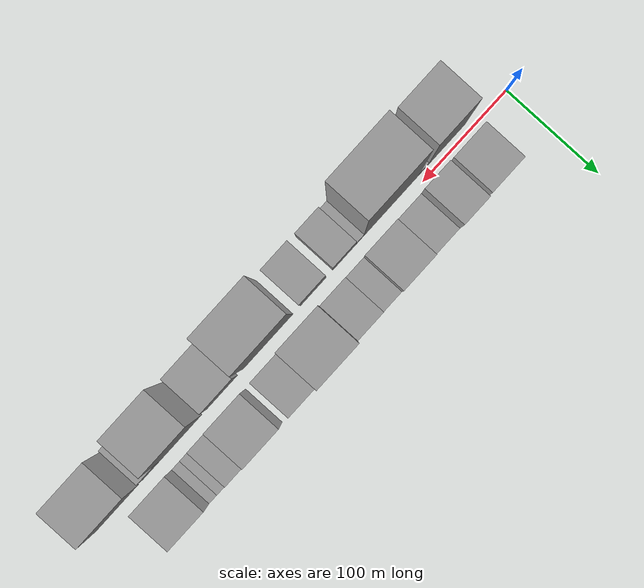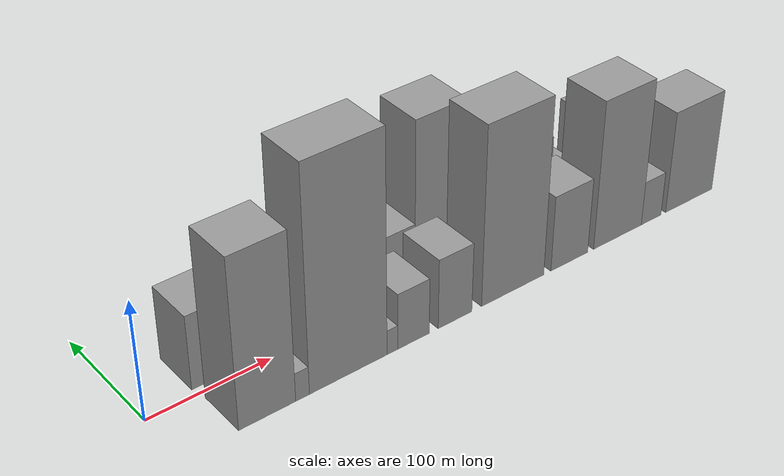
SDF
<sdf version="1.6">
 <world name="default">
  <scene>
   <sky><clouds><speed>12</speed></clouds></sky>
   <ambient>0.4 0.4 0.4 1</ambient>
   <background>0.7 0.7 0.7 1</background>
   <shadows>1</shadows>
  </scene>
  <gravity>0 0 -9.8066</gravity>
  <magnetic_field>6e-06 2.3e-05 -4.2e-05</magnetic_field>
  <physics default="0" name="default_physics" type="ode">
   <ode>
    <solver>
     <type>quick</type>
     <iters>10</iters>
     <sor>1.0</sor>
     <use_dynamic_moi_rescaling>0</use_dynamic_moi_rescaling>
    </solver>
    <constraints>
     <cfm>0</cfm>
     <erp>0.2</erp>
     <contact_max_correcting_vel>100</contact_max_correcting_vel>
     <contact_surface_layer>0.001</contact_surface_layer>
    </constraints>
   </ode>
   <max_step_size>0.004</max_step_size>
   <real_time_factor>1</real_time_factor>
   <real_time_update_rate>250</real_time_update_rate>
  </physics>
  <light name="sun" type="directional">
   <pose>0 0 10 0 0 0</pose>
   <diffuse>0.8 0.8 0.8 1</diffuse>
   <specular>0.2 0.2 0.2 1</specular>
   <attenuation>
    <range>1000</range>
    <constant>0.9</constant>
    <linear>0.01</linear>
    <quadratic>0.001</quadratic>
   </attenuation>
   <direction>-0.5 0.1 -0.9</direction>
  </light>
  <model name="building_1">
   <static>1</static>
   <pose>58.5081 26.0000 0 0.000000 0.000000 1.570796</pose>
   <link name="link">
    <pose>0 0 31.50 0 0 0</pose>
    <collision name="collision"><geometry><box><size>40.0000 37.0162 63.0000</size></box></geometry></collision>
    <visual name="visual">
     <cast_shadows>0</cast_shadows>
     <geometry><box><size>40.0000 37.0162 63.0000</size></box></geometry>
     <material>
      <script>
       <uri>model://grey_wall/materials/scripts</uri>
       <uri>model://grey_wall/materials/textures</uri>
       <name>vrc/grey_wall</name>
      </script>
     </material>
    </visual>
   </link>
  </model>
  <model name="building_2">
   <static>1</static>
   <pose>98.3458 26.0000 0 0.000000 0.000000 1.570796</pose>
   <link name="link">
    <pose>0 0 46.50 0 0 0</pose>
    <collision name="collision"><geometry><box><size>40.0000 28.6591 93.0000</size></box></geometry></collision>
    <visual name="visual">
     <cast_shadows>0</cast_shadows>
     <geometry><box><size>40.0000 28.6591 93.0000</size></box></geometry>
     <material>
      <script>
       <uri>model://grey_wall/materials/scripts</uri>
       <uri>model://grey_wall/materials/textures</uri>
       <name>vrc/grey_wall</name>
      </script>
     </material>
    </visual>
   </link>
  </model>
  <model name="building_3">
   <static>1</static>
   <pose>126.8009 26.0000 0 0.000000 0.000000 1.570796</pose>
   <link name="link">
    <pose>0 0 25.50 0 0 0</pose>
    <collision name="collision"><geometry><box><size>40.0000 28.2510 51.0000</size></box></geometry></collision>
    <visual name="visual">
     <cast_shadows>0</cast_shadows>
     <geometry><box><size>40.0000 28.2510 51.0000</size></box></geometry>
     <material>
      <script>
       <uri>model://grey_wall/materials/scripts</uri>
       <uri>model://grey_wall/materials/textures</uri>
       <name>vrc/grey_wall</name>
      </script>
     </material>
    </visual>
   </link>
  </model>
  <model name="building_4">
   <static>1</static>
   <pose>159.5957 26.0000 0 0.000000 0.000000 1.570796</pose>
   <link name="link">
    <pose>0 0 36.00 0 0 0</pose>
    <collision name="collision"><geometry><box><size>40.0000 37.3388 72.0000</size></box></geometry></collision>
    <visual name="visual">
     <cast_shadows>0</cast_shadows>
     <geometry><box><size>40.0000 37.3388 72.0000</size></box></geometry>
     <material>
      <script>
       <uri>model://grey_wall/materials/scripts</uri>
       <uri>model://grey_wall/materials/textures</uri>
       <name>vrc/grey_wall</name>
      </script>
     </material>
    </visual>
   </link>
  </model>
  <model name="building_5">
   <static>1</static>
   <pose>188.9853 26.0000 0 0.000000 0.000000 1.570796</pose>
   <link name="link">
    <pose>0 0 19.50 0 0 0</pose>
    <collision name="collision"><geometry><box><size>40.0000 21.4404 39.0000</size></box></geometry></collision>
    <visual name="visual">
     <cast_shadows>0</cast_shadows>
     <geometry><box><size>40.0000 21.4404 39.0000</size></box></geometry>
     <material>
      <script>
       <uri>model://grey_wall/materials/scripts</uri>
       <uri>model://grey_wall/materials/textures</uri>
       <name>vrc/grey_wall</name>
      </script>
     </material>
    </visual>
   </link>
  </model>
  <model name="building_6">
   <static>1</static>
   <pose>214.7154 26.0000 0 0.000000 0.000000 1.570796</pose>
   <link name="link">
    <pose>0 0 25.50 0 0 0</pose>
    <collision name="collision"><geometry><box><size>40.0000 30.0197 51.0000</size></box></geometry></collision>
    <visual name="visual">
     <cast_shadows>0</cast_shadows>
     <geometry><box><size>40.0000 30.0197 51.0000</size></box></geometry>
     <material>
      <script>
       <uri>model://grey_wall/materials/scripts</uri>
       <uri>model://grey_wall/materials/textures</uri>
       <name>vrc/grey_wall</name>
      </script>
     </material>
    </visual>
   </link>
  </model>
  <model name="building_7">
   <static>1</static>
   <pose>252.4401 26.0000 0 0.000000 0.000000 1.570796</pose>
   <link name="link">
    <pose>0 0 69.00 0 0 0</pose>
    <collision name="collision"><geometry><box><size>40.0000 45.4296 138.0000</size></box></geometry></collision>
    <visual name="visual">
     <cast_shadows>0</cast_shadows>
     <geometry><box><size>40.0000 45.4296 138.0000</size></box></geometry>
     <material>
      <script>
       <uri>model://grey_wall/materials/scripts</uri>
       <uri>model://grey_wall/materials/textures</uri>
       <name>vrc/grey_wall</name>
      </script>
     </material>
    </visual>
   </link>
  </model>
  <model name="building_8">
   <static>1</static>
   <pose>292.1349 26.0000 0 0.000000 0.000000 1.570796</pose>
   <link name="link">
    <pose>0 0 30.00 0 0 0</pose>
    <collision name="collision"><geometry><box><size>40.0000 33.9601 60.0000</size></box></geometry></collision>
    <visual name="visual">
     <cast_shadows>0</cast_shadows>
     <geometry><box><size>40.0000 33.9601 60.0000</size></box></geometry>
     <material>
      <script>
       <uri>model://grey_wall/materials/scripts</uri>
       <uri>model://grey_wall/materials/textures</uri>
       <name>vrc/grey_wall</name>
      </script>
     </material>
    </visual>
   </link>
  </model>
  <model name="building_9">
   <static>1</static>
   <pose>339.7213 26.0000 0 0.000000 0.000000 1.570796</pose>
   <link name="link">
    <pose>0 0 36.00 0 0 0</pose>
    <collision name="collision"><geometry><box><size>40.0000 41.2126 72.0000</size></box></geometry></collision>
    <visual name="visual">
     <cast_shadows>0</cast_shadows>
     <geometry><box><size>40.0000 41.2126 72.0000</size></box></geometry>
     <material>
      <script>
       <uri>model://grey_wall/materials/scripts</uri>
       <uri>model://grey_wall/materials/textures</uri>
       <name>vrc/grey_wall</name>
      </script>
     </material>
    </visual>
   </link>
  </model>
  <model name="building_10">
   <static>1</static>
   <pose>371.8028 26.0000 0 0.000000 0.000000 1.570796</pose>
   <link name="link">
    <pose>0 0 21.00 0 0 0</pose>
    <collision name="collision"><geometry><box><size>40.0000 22.9505 42.0000</size></box></geometry></collision>
    <visual name="visual">
     <cast_shadows>0</cast_shadows>
     <geometry><box><size>40.0000 22.9505 42.0000</size></box></geometry>
     <material>
      <script>
       <uri>model://grey_wall/materials/scripts</uri>
       <uri>model://grey_wall/materials/textures</uri>
       <name>vrc/grey_wall</name>
      </script>
     </material>
    </visual>
   </link>
  </model>
  <model name="building_11">
   <static>1</static>
   <pose>388.9061 26.0000 0 0.000000 0.000000 1.570796</pose>
   <link name="link">
    <pose>0 0 12.00 0 0 0</pose>
    <collision name="collision"><geometry><box><size>40.0000 11.2562 24.0000</size></box></geometry></collision>
    <visual name="visual">
     <cast_shadows>0</cast_shadows>
     <geometry><box><size>40.0000 11.2562 24.0000</size></box></geometry>
     <material>
      <script>
       <uri>model://grey_wall/materials/scripts</uri>
       <uri>model://grey_wall/materials/textures</uri>
       <name>vrc/grey_wall</name>
      </script>
     </material>
    </visual>
   </link>
  </model>
  <model name="building_12">
   <static>1</static>
   <pose>399.2907 26.0000 0 0.000000 0.000000 1.570796</pose>
   <link name="link">
    <pose>0 0 10.50 0 0 0</pose>
    <collision name="collision"><geometry><box><size>40.0000 9.5130 21.0000</size></box></geometry></collision>
    <visual name="visual">
     <cast_shadows>0</cast_shadows>
     <geometry><box><size>40.0000 9.5130 21.0000</size></box></geometry>
     <material>
      <script>
       <uri>model://grey_wall/materials/scripts</uri>
       <uri>model://grey_wall/materials/textures</uri>
       <name>vrc/grey_wall</name>
      </script>
     </material>
    </visual>
   </link>
  </model>
  <model name="building_13">
   <static>1</static>
   <pose>424.3891 26.0000 0 0.000000 0.000000 1.570796</pose>
   <link name="link">
    <pose>0 0 34.50 0 0 0</pose>
    <collision name="collision"><geometry><box><size>40.0000 40.6837 69.0000</size></box></geometry></collision>
    <visual name="visual">
     <cast_shadows>0</cast_shadows>
     <geometry><box><size>40.0000 40.6837 69.0000</size></box></geometry>
     <material>
      <script>
       <uri>model://grey_wall/materials/scripts</uri>
       <uri>model://grey_wall/materials/textures</uri>
       <name>vrc/grey_wall</name>
      </script>
     </material>
    </visual>
   </link>
  </model>
  <model name="building_14">
   <static>1</static>
   <pose>65.4992 -26.0000 0 0.000000 0.000000 1.570796</pose>
   <link name="link">
    <pose>0 0 70.50 0 0 0</pose>
    <collision name="collision"><geometry><box><size>40.0000 44.9984 141.0000</size></box></geometry></collision>
    <visual name="visual">
     <cast_shadows>0</cast_shadows>
     <geometry><box><size>40.0000 44.9984 141.0000</size></box></geometry>
     <material>
      <script>
       <uri>model://grey_wall/materials/scripts</uri>
       <uri>model://grey_wall/materials/textures</uri>
       <name>vrc/grey_wall</name>
      </script>
     </material>
    </visual>
   </link>
  </model>
  <model name="building_15">
   <static>1</static>
   <pose>93.5555 -26.0000 0 0.000000 0.000000 1.570796</pose>
   <link name="link">
    <pose>0 0 12.00 0 0 0</pose>
    <collision name="collision"><geometry><box><size>40.0000 11.1142 24.0000</size></box></geometry></collision>
    <visual name="visual">
     <cast_shadows>0</cast_shadows>
     <geometry><box><size>40.0000 11.1142 24.0000</size></box></geometry>
     <material>
      <script>
       <uri>model://grey_wall/materials/scripts</uri>
       <uri>model://grey_wall/materials/textures</uri>
       <name>vrc/grey_wall</name>
      </script>
     </material>
    </visual>
   </link>
  </model>
  <model name="building_16">
   <static>1</static>
   <pose>131.6367 -26.0000 0 0.000000 0.000000 1.570796</pose>
   <link name="link">
    <pose>0 0 93.00 0 0 0</pose>
    <collision name="collision"><geometry><box><size>40.0000 65.0482 186.0000</size></box></geometry></collision>
    <visual name="visual">
     <cast_shadows>0</cast_shadows>
     <geometry><box><size>40.0000 65.0482 186.0000</size></box></geometry>
     <material>
      <script>
       <uri>model://grey_wall/materials/scripts</uri>
       <uri>model://grey_wall/materials/textures</uri>
       <name>vrc/grey_wall</name>
      </script>
     </material>
    </visual>
   </link>
  </model>
  <model name="building_17">
   <static>1</static>
   <pose>168.7996 -26.0000 0 0.000000 0.000000 1.570796</pose>
   <link name="link">
    <pose>0 0 10.50 0 0 0</pose>
    <collision name="collision"><geometry><box><size>40.0000 9.2775 21.0000</size></box></geometry></collision>
    <visual name="visual">
     <cast_shadows>0</cast_shadows>
     <geometry><box><size>40.0000 9.2775 21.0000</size></box></geometry>
     <material>
      <script>
       <uri>model://grey_wall/materials/scripts</uri>
       <uri>model://grey_wall/materials/textures</uri>
       <name>vrc/grey_wall</name>
      </script>
     </material>
    </visual>
   </link>
  </model>
  <model name="building_18">
   <static>1</static>
   <pose>187.2991 -26.0000 0 0.000000 0.000000 1.570796</pose>
   <link name="link">
    <pose>0 0 24.00 0 0 0</pose>
    <collision name="collision"><geometry><box><size>40.0000 27.7216 48.0000</size></box></geometry></collision>
    <visual name="visual">
     <cast_shadows>0</cast_shadows>
     <geometry><box><size>40.0000 27.7216 48.0000</size></box></geometry>
     <material>
      <script>
       <uri>model://grey_wall/materials/scripts</uri>
       <uri>model://grey_wall/materials/textures</uri>
       <name>vrc/grey_wall</name>
      </script>
     </material>
    </visual>
   </link>
  </model>
  <model name="building_19">
   <static>1</static>
   <pose>224.4749 -26.0000 0 0.000000 0.000000 1.570796</pose>
   <link name="link">
    <pose>0 0 30.00 0 0 0</pose>
    <collision name="collision"><geometry><box><size>40.0000 30.6301 60.0000</size></box></geometry></collision>
    <visual name="visual">
     <cast_shadows>0</cast_shadows>
     <geometry><box><size>40.0000 30.6301 60.0000</size></box></geometry>
     <material>
      <script>
       <uri>model://grey_wall/materials/scripts</uri>
       <uri>model://grey_wall/materials/textures</uri>
       <name>vrc/grey_wall</name>
      </script>
     </material>
    </visual>
   </link>
  </model>
  <model name="building_20">
   <static>1</static>
   <pose>278.4888 -26.0000 0 0.000000 0.000000 1.570796</pose>
   <link name="link">
    <pose>0 0 76.50 0 0 0</pose>
    <collision name="collision"><geometry><box><size>40.0000 59.3978 153.0000</size></box></geometry></collision>
    <visual name="visual">
     <cast_shadows>0</cast_shadows>
     <geometry><box><size>40.0000 59.3978 153.0000</size></box></geometry>
     <material>
      <script>
       <uri>model://grey_wall/materials/scripts</uri>
       <uri>model://grey_wall/materials/textures</uri>
       <name>vrc/grey_wall</name>
      </script>
     </material>
    </visual>
   </link>
  </model>
  <model name="building_21">
   <static>1</static>
   <pose>333.5885 -26.0000 0 0.000000 0.000000 1.570796</pose>
   <link name="link">
    <pose>0 0 33.00 0 0 0</pose>
    <collision name="collision"><geometry><box><size>40.0000 36.8016 66.0000</size></box></geometry></collision>
    <visual name="visual">
     <cast_shadows>0</cast_shadows>
     <geometry><box><size>40.0000 36.8016 66.0000</size></box></geometry>
     <material>
      <script>
       <uri>model://grey_wall/materials/scripts</uri>
       <uri>model://grey_wall/materials/textures</uri>
       <name>vrc/grey_wall</name>
      </script>
     </material>
    </visual>
   </link>
  </model>
  <model name="building_22">
   <static>1</static>
   <pose>382.8459 -26.0000 0 0.000000 0.000000 1.570796</pose>
   <link name="link">
    <pose>0 0 64.50 0 0 0</pose>
    <collision name="collision"><geometry><box><size>40.0000 49.7132 129.0000</size></box></geometry></collision>
    <visual name="visual">
     <cast_shadows>0</cast_shadows>
     <geometry><box><size>40.0000 49.7132 129.0000</size></box></geometry>
     <material>
      <script>
       <uri>model://grey_wall/materials/scripts</uri>
       <uri>model://grey_wall/materials/textures</uri>
       <name>vrc/grey_wall</name>
      </script>
     </material>
    </visual>
   </link>
  </model>
  <model name="building_23">
   <static>1</static>
   <pose>418.2600 -26.0000 0 0.000000 0.000000 1.570796</pose>
   <link name="link">
    <pose>0 0 19.50 0 0 0</pose>
    <collision name="collision"><geometry><box><size>40.0000 21.1149 39.0000</size></box></geometry></collision>
    <visual name="visual">
     <cast_shadows>0</cast_shadows>
     <geometry><box><size>40.0000 21.1149 39.0000</size></box></geometry>
     <material>
      <script>
       <uri>model://grey_wall/materials/scripts</uri>
       <uri>model://grey_wall/materials/textures</uri>
       <name>vrc/grey_wall</name>
      </script>
     </material>
    </visual>
   </link>
  </model>
  <model name="building_24">
   <static>1</static>
   <pose>459.3630 -26.0000 0 0.000000 0.000000 1.570796</pose>
   <link name="link">
    <pose>0 0 45.00 0 0 0</pose>
    <collision name="collision"><geometry><box><size>40.0000 51.0911 90.0000</size></box></geometry></collision>
    <visual name="visual">
     <cast_shadows>0</cast_shadows>
     <geometry><box><size>40.0000 51.0911 90.0000</size></box></geometry>
     <material>
      <script>
       <uri>model://grey_wall/materials/scripts</uri>
       <uri>model://grey_wall/materials/textures</uri>
       <name>vrc/grey_wall</name>
      </script>
     </material>
    </visual>
   </link>
  </model>
 </world>
</sdf>
